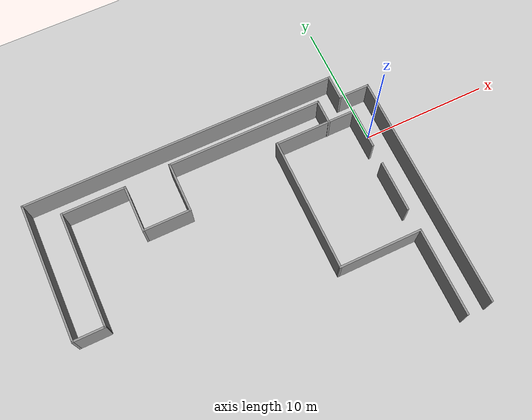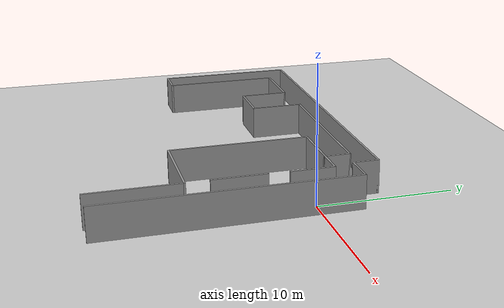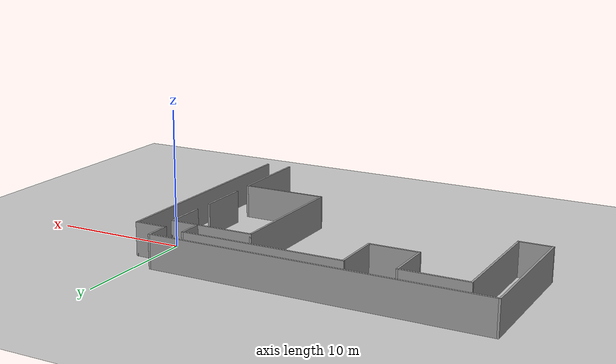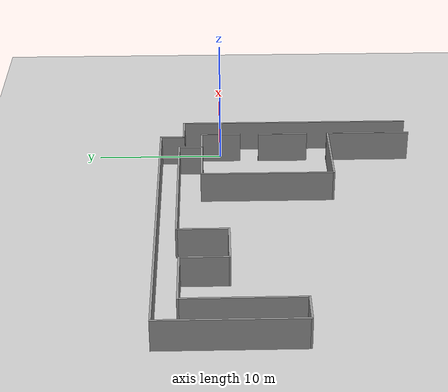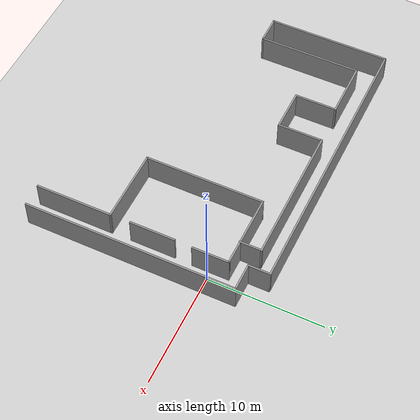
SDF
<sdf version="1.7">
 <world name="default">
  <light name="sun" type="directional">
   <pose>0 0 10 0 -0 0</pose>
   <diffuse>0.8 0.8 0.8 1</diffuse>
   <specular>0.2 0.2 0.2 1</specular>
   <attenuation>
    <range>1000</range>
    <constant>0.9</constant>
    <linear>0.01</linear>
    <quadratic>0.001</quadratic>
   </attenuation>
   <direction>-0.5 0.1 -0.9</direction>
   <spot><inner_angle>0</inner_angle><outer_angle>0</outer_angle><falloff>0</falloff></spot>
  </light>
  <model name="ground_plane">
   <static>1</static>
   <link name="link">
    <collision name="collision">
     <geometry><plane><normal>0 0 1</normal><size>100 100</size></plane></geometry>
     <surface>
      <contact><collide_bitmask>65535</collide_bitmask></contact>
      <friction><ode><mu>100</mu><mu2>50</mu2></ode></friction>
     </surface>
    </collision>
    <visual name="visual">
     <cast_shadows>0</cast_shadows>
     <geometry><plane><normal>0 0 1</normal><size>100 100</size></plane></geometry>
     <material>
      <script><uri>file://media/materials/scripts/gazebo.material</uri><name>Gazebo/Grey</name></script>
     </material>
    </visual>
   </link>
  </model>
  <gravity>0 0 -9.8</gravity>
  <magnetic_field>6e-06 2.3e-05 -4.2e-05</magnetic_field>
  <atmosphere type="adiabatic"/>
  <physics type="ode">
   <max_step_size>0.001</max_step_size>
   <real_time_factor>1</real_time_factor>
   <real_time_update_rate>1000</real_time_update_rate>
  </physics>
  <scene><ambient>0.4 0.4 0.4 1</ambient><background>0.7 0.7 0.7 1</background><shadows>1</shadows></scene>
  <audio><device>default</device></audio>
  <spherical_coordinates>
   <surface_model>EARTH_WGS84</surface_model>
   <latitude_deg>0</latitude_deg>
   <longitude_deg>0</longitude_deg>
   <elevation>0</elevation>
   <heading_deg>0</heading_deg>
  </spherical_coordinates>
  <model name="Untitled">
   <pose>-6.61592 -5.28728 0 0 -0 0</pose>
   <link name="Wall_18">
    <collision name="Wall_18_Collision">
     <geometry><box><size>6.75 0.15 2.5</size></box></geometry>
     <pose>0 0 1.25 0 -0 0</pose>
    </collision>
    <visual name="Wall_18_Visual">
     <pose>0 0 1.25 0 -0 0</pose>
     <geometry><box><size>6.75 0.15 2.5</size></box></geometry>
     <material>
      <script><uri>file://media/materials/scripts/gazebo.material</uri><name>Gazebo/Grey</name></script>
      <ambient>1 1 1 1</ambient>
     </material>
     <meta><layer>0</layer></meta>
    </visual>
    <pose>5.89516 -6.83563 0 0 -0 1.5708</pose>
   </link>
   <link name="Wall_19">
    <collision name="Wall_19_Collision">
     <geometry><box><size>6.5 0.15 2.5</size></box></geometry>
     <pose>0 0 1.25 0 -0 0</pose>
    </collision>
    <visual name="Wall_19_Visual">
     <pose>0 0 1.25 0 -0 0</pose>
     <geometry><box><size>6.5 0.15 2.5</size></box></geometry>
     <material>
      <script><uri>file://media/materials/scripts/gazebo.material</uri><name>Gazebo/Grey</name></script>
      <ambient>1 1 1 1</ambient>
     </material>
     <meta><layer>0</layer></meta>
    </visual>
    <pose>2.72016 -3.53563 0 0 -0 3.14159</pose>
   </link>
   <link name="Wall_20">
    <collision name="Wall_20_Collision">
     <geometry><box><size>10.5 0.15 2.5</size></box></geometry>
     <pose>0 0 1.25 0 -0 0</pose>
    </collision>
    <visual name="Wall_20_Visual">
     <pose>0 0 1.25 0 -0 0</pose>
     <geometry><box><size>10.5 0.15 2.5</size></box></geometry>
     <material>
      <script><uri>file://media/materials/scripts/gazebo.material</uri><name>Gazebo/Grey</name></script>
      <ambient>1 1 1 1</ambient>
     </material>
     <meta><layer>0</layer></meta>
    </visual>
    <pose>-0.454842 1.63937 0 0 -0 1.5708</pose>
   </link>
   <link name="Wall_21">
    <collision name="Wall_21_Collision">
     <geometry><box><size>6.5 0.15 2.5</size></box></geometry>
     <pose>0 0 1.25 0 -0 0</pose>
    </collision>
    <visual name="Wall_21_Visual">
     <pose>0 0 1.25 0 -0 0</pose>
     <geometry><box><size>6.5 0.15 2.5</size></box></geometry>
     <material>
      <script><uri>file://media/materials/scripts/gazebo.material</uri><name>Gazebo/Grey</name></script>
      <ambient>1 1 1 1</ambient>
     </material>
     <meta><layer>0</layer></meta>
    </visual>
    <pose>2.72016 6.81437 0 0 -0 0</pose>
   </link>
   <link name="Wall_22">
    <collision name="Wall_22_Collision">
     <geometry><box><size>3.25 0.15 2.5</size></box></geometry>
     <pose>0 0 1.25 0 -0 0</pose>
    </collision>
    <visual name="Wall_22_Visual">
     <pose>0 0 1.25 0 -0 0</pose>
     <geometry><box><size>3.25 0.15 2.5</size></box></geometry>
     <material>
      <script><uri>file://media/materials/scripts/gazebo.material</uri><name>Gazebo/Grey</name></script>
      <ambient>1 1 1 1</ambient>
     </material>
     <meta><layer>0</layer></meta>
    </visual>
    <pose>5.89516 5.26437 0 0 -0 -1.5708</pose>
   </link>
   <link name="Wall_24">
    <collision name="Wall_24_Collision">
     <geometry><box><size>4 0.15 2.5</size></box></geometry>
     <pose>0 0 1.25 0 -0 0</pose>
    </collision>
    <visual name="Wall_24_Visual">
     <pose>0 0 1.25 0 -0 0</pose>
     <geometry><box><size>4 0.15 2.5</size></box></geometry>
     <material>
      <script><uri>file://media/materials/scripts/gazebo.material</uri><name>Gazebo/Grey</name></script>
      <ambient>1 1 1 1</ambient>
     </material>
     <meta><layer>0</layer></meta>
    </visual>
    <pose>5.84774 0.175299 0 0 -0 -1.5708</pose>
   </link>
   <link name="Wall_26">
    <collision name="Wall_26_Collision">
     <geometry><box><size>2 0.15 2.5</size></box></geometry>
     <pose>0 0 1.25 0 -0 0</pose>
    </collision>
    <visual name="Wall_26_Visual">
     <pose>0 0 1.25 0 -0 0</pose>
     <geometry><box><size>2 0.15 2.5</size></box></geometry>
     <material>
      <script><uri>file://media/materials/scripts/gazebo.material</uri><name>Gazebo/Grey</name></script>
      <ambient>1 1 1 1</ambient>
     </material>
     <meta><layer>0</layer></meta>
    </visual>
    <pose>3.81043 7.71063 0 0 -0 1.5708</pose>
   </link>
   <link name="Wall_27">
    <collision name="Wall_27_Collision">
     <geometry><box><size>12.25 0.15 2.5</size></box></geometry>
     <pose>0 0 1.25 0 -0 0</pose>
    </collision>
    <visual name="Wall_27_Visual">
     <pose>0 0 1.25 0 -0 0</pose>
     <geometry><box><size>12.25 0.15 2.5</size></box></geometry>
     <material>
      <script><uri>file://media/materials/scripts/gazebo.material</uri><name>Gazebo/Grey</name></script>
      <ambient>1 1 1 1</ambient>
     </material>
     <meta><layer>0</layer></meta>
    </visual>
    <pose>-2.23957 8.63563 0 0 -0 3.14159</pose>
   </link>
   <link name="Wall_28">
    <collision name="Wall_28_Collision">
     <geometry><box><size>4 0.15 2.5</size></box></geometry>
     <pose>0 0 1.25 0 -0 0</pose>
    </collision>
    <visual name="Wall_28_Visual">
     <pose>0 0 1.25 0 -0 0</pose>
     <geometry><box><size>4 0.15 2.5</size></box></geometry>
     <material>
      <script><uri>file://media/materials/scripts/gazebo.material</uri><name>Gazebo/Grey</name></script>
      <ambient>1 1 1 1</ambient>
     </material>
     <meta><layer>0</layer></meta>
    </visual>
    <pose>-8.28957 6.71063 0 0 -0 -1.5708</pose>
   </link>
   <link name="Wall_29">
    <collision name="Wall_29_Collision">
     <geometry><box><size>3.75 0.15 2.5</size></box></geometry>
     <pose>0 0 1.25 0 -0 0</pose>
    </collision>
    <visual name="Wall_29_Visual">
     <pose>0 0 1.25 0 -0 0</pose>
     <geometry><box><size>3.75 0.15 2.5</size></box></geometry>
     <material>
      <script><uri>file://media/materials/scripts/gazebo.material</uri><name>Gazebo/Grey</name></script>
      <ambient>1 1 1 1</ambient>
     </material>
     <meta><layer>0</layer></meta>
    </visual>
    <pose>-10.0896 4.78563 0 0 -0 3.14159</pose>
   </link>
   <link name="Wall_30">
    <collision name="Wall_30_Collision">
     <geometry><box><size>3.75 0.15 2.5</size></box></geometry>
     <pose>0 0 1.25 0 -0 0</pose>
    </collision>
    <visual name="Wall_30_Visual">
     <pose>0 0 1.25 0 -0 0</pose>
     <geometry><box><size>3.75 0.15 2.5</size></box></geometry>
     <material>
      <script><uri>file://media/materials/scripts/gazebo.material</uri><name>Gazebo/Grey</name></script>
      <ambient>1 1 1 1</ambient>
     </material>
     <meta><layer>0</layer></meta>
    </visual>
    <pose>-11.8896 6.58563 0 0 -0 1.5708</pose>
   </link>
   <link name="Wall_31">
    <collision name="Wall_31_Collision">
     <geometry><box><size>5 0.15 2.5</size></box></geometry>
     <pose>0 0 1.25 0 -0 0</pose>
    </collision>
    <visual name="Wall_31_Visual">
     <pose>0 0 1.25 0 -0 0</pose>
     <geometry><box><size>5 0.15 2.5</size></box></geometry>
     <material>
      <script><uri>file://media/materials/scripts/gazebo.material</uri><name>Gazebo/Grey</name></script>
      <ambient>1 1 1 1</ambient>
     </material>
     <meta><layer>0</layer></meta>
    </visual>
    <pose>-14.3146 8.38563 0 0 -0 3.14159</pose>
   </link>
   <link name="Wall_32">
    <collision name="Wall_32_Collision">
     <geometry><box><size>9 0.15 2.5</size></box></geometry>
     <pose>0 0 1.25 0 -0 0</pose>
    </collision>
    <visual name="Wall_32_Visual">
     <pose>0 0 1.25 0 -0 0</pose>
     <geometry><box><size>9 0.15 2.5</size></box></geometry>
     <material>
      <script><uri>file://media/materials/scripts/gazebo.material</uri><name>Gazebo/Grey</name></script>
      <ambient>1 1 1 1</ambient>
     </material>
     <meta><layer>0</layer></meta>
    </visual>
    <pose>-16.7396 3.96063 0 0 -0 -1.5708</pose>
   </link>
   <link name="Wall_33">
    <collision name="Wall_33_Collision">
     <geometry><box><size>2.5 0.15 2.5</size></box></geometry>
     <pose>0 0 1.25 0 -0 0</pose>
    </collision>
    <visual name="Wall_33_Visual">
     <pose>0 0 1.25 0 -0 0</pose>
     <geometry><box><size>2.5 0.15 2.5</size></box></geometry>
     <material>
      <script><uri>file://media/materials/scripts/gazebo.material</uri><name>Gazebo/Grey</name></script>
      <ambient>1 1 1 1</ambient>
     </material>
     <meta><layer>0</layer></meta>
    </visual>
    <pose>-17.9146 -0.464371 0 0 -0 3.14159</pose>
   </link>
   <link name="Wall_34">
    <collision name="Wall_34_Collision">
     <geometry><box><size>10.75 0.15 2.5</size></box></geometry>
     <pose>0 0 1.25 0 -0 0</pose>
    </collision>
    <visual name="Wall_34_Visual">
     <pose>0 0 1.25 0 -0 0</pose>
     <geometry><box><size>10.75 0.15 2.5</size></box></geometry>
     <material>
      <script><uri>file://media/materials/scripts/gazebo.material</uri><name>Gazebo/Grey</name></script>
      <ambient>1 1 1 1</ambient>
     </material>
     <meta><layer>0</layer></meta>
    </visual>
    <pose>-19.0896 4.83563 0 0 -0 1.5708</pose>
   </link>
   <link name="Wall_35">
    <collision name="Wall_35_Collision">
     <geometry><box><size>24.75 0.15 2.5</size></box></geometry>
     <pose>0 0 1.25 0 -0 0</pose>
    </collision>
    <visual name="Wall_35_Visual">
     <pose>0 0 1.25 0 -0 0</pose>
     <geometry><box><size>24.75 0.15 2.5</size></box></geometry>
     <material>
      <script><uri>file://media/materials/scripts/gazebo.material</uri><name>Gazebo/Grey</name></script>
      <ambient>1 1 1 1</ambient>
     </material>
     <meta><layer>0</layer></meta>
    </visual>
    <pose>-6.78957 10.1356 0 0 -0 0</pose>
   </link>
   <link name="Wall_36">
    <collision name="Wall_36_Collision">
     <geometry><box><size>2 0.15 2.5</size></box></geometry>
     <pose>0 0 1.25 0 -0 0</pose>
    </collision>
    <visual name="Wall_36_Visual">
     <pose>0 0 1.25 0 -0 0</pose>
     <geometry><box><size>2 0.15 2.5</size></box></geometry>
     <material>
      <script><uri>file://media/materials/scripts/gazebo.material</uri><name>Gazebo/Grey</name></script>
      <ambient>1 1 1 1</ambient>
     </material>
     <meta><layer>0</layer></meta>
    </visual>
    <pose>5.51043 9.21063 0 0 -0 -1.5708</pose>
   </link>
   <link name="Wall_37">
    <collision name="Wall_37_Collision">
     <geometry><box><size>2.5 0.15 2.5</size></box></geometry>
     <pose>0 0 1.25 0 -0 0</pose>
    </collision>
    <visual name="Wall_37_Visual">
     <pose>0 0 1.25 0 -0 0</pose>
     <geometry><box><size>2.5 0.15 2.5</size></box></geometry>
     <material>
      <script><uri>file://media/materials/scripts/gazebo.material</uri><name>Gazebo/Grey</name></script>
      <ambient>1 1 1 1</ambient>
     </material>
     <meta><layer>0</layer></meta>
    </visual>
    <pose>6.68543 8.28563 0 0 -0 0</pose>
   </link>
   <link name="Wall_38">
    <collision name="Wall_38_Collision">
     <geometry><box><size>18.5 0.15 2.5</size></box></geometry>
     <pose>0 0 1.25 0 -0 0</pose>
    </collision>
    <visual name="Wall_38_Visual">
     <pose>0 0 1.25 0 -0 0</pose>
     <geometry><box><size>18.5 0.15 2.5</size></box></geometry>
     <material>
      <script><uri>file://media/materials/scripts/gazebo.material</uri><name>Gazebo/Grey</name></script>
      <ambient>1 1 1 1</ambient>
     </material>
     <meta><layer>0</layer></meta>
    </visual>
    <pose>7.86043 -0.889371 0 0 -0 -1.5708</pose>
   </link>
   <static>1</static>
  </model>
 </world>
</sdf>
